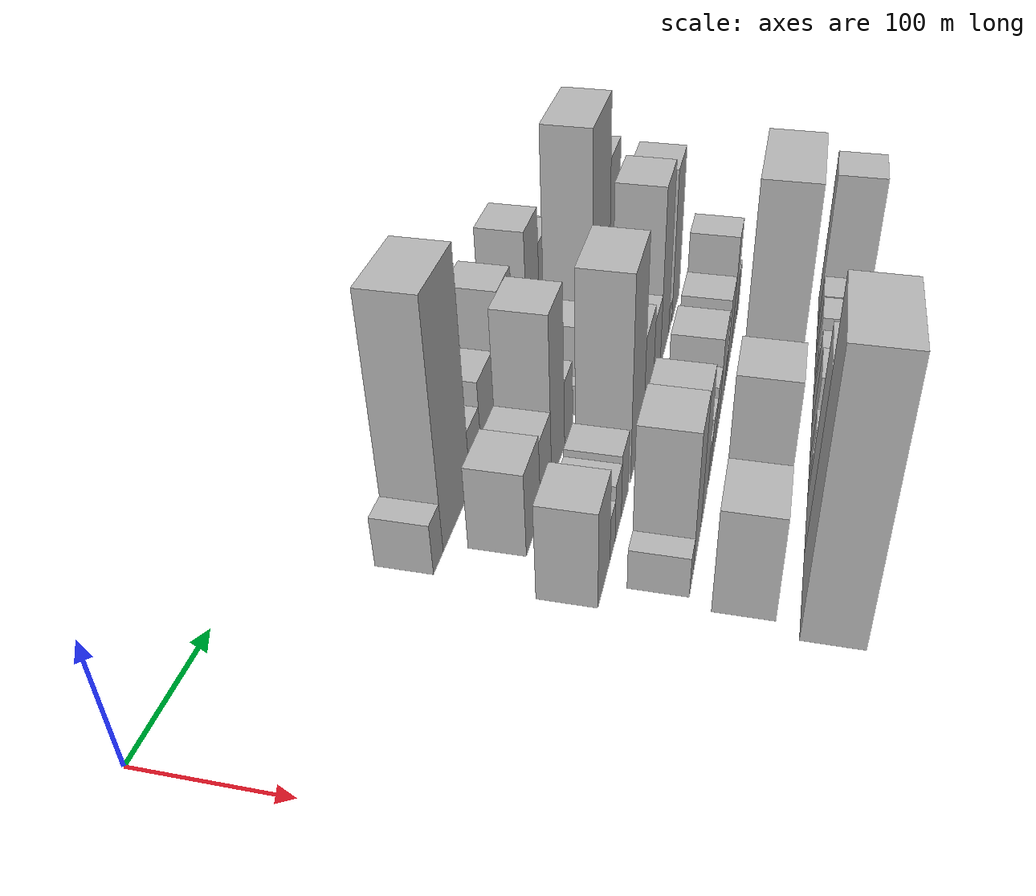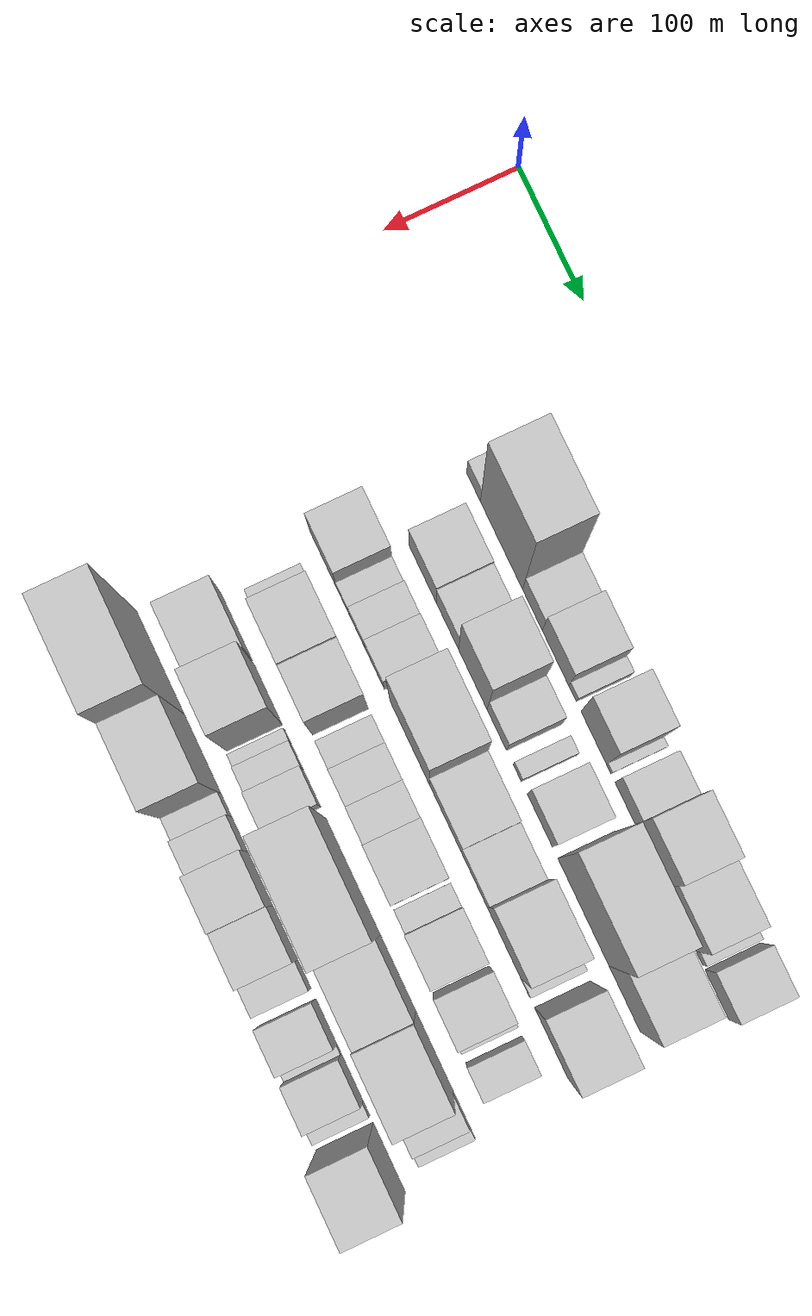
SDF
<sdf version="1.6">
 <world name="default">
  <model name="building_28">
   <static>1</static>
   <pose>100.0000 182.4115 0 0.000000 0.000000 0.000000</pose>
   <link name="link">
    <pose>0 0 21.00 0 0 0</pose>
    <collision name="collision"><geometry><box><size>40.0000 21.1088 42.0000</size></box></geometry></collision>
    <visual name="visual">
     <cast_shadows>0</cast_shadows>
     <geometry><box><size>40.0000 21.1088 42.0000</size></box></geometry>
     <material>
      <script>
       <uri>model://HANNAS_wall/materials/scripts</uri>
       <uri>model://HANNAS_wall/materials/textures</uri>
       <name>vrc/HANNAS_wall</name>
      </script>
     </material>
    </visual>
   </link>
  </model>
  <model name="building_29">
   <static>1</static>
   <pose>100.0000 225.2210 0 0.000000 0.000000 0.000000</pose>
   <link name="link">
    <pose>0 0 99.00 0 0 0</pose>
    <collision name="collision"><geometry><box><size>40.0000 64.5103 198.0000</size></box></geometry></collision>
    <visual name="visual">
     <cast_shadows>0</cast_shadows>
     <geometry><box><size>40.0000 64.5103 198.0000</size></box></geometry>
     <material>
      <script>
       <uri>model://HANNAS_wall/materials/scripts</uri>
       <uri>model://HANNAS_wall/materials/textures</uri>
       <name>vrc/HANNAS_wall</name>
      </script>
     </material>
    </visual>
   </link>
  </model>
  <model name="building_30">
   <static>1</static>
   <pose>100.0000 272.4925 0 0.000000 0.000000 0.000000</pose>
   <link name="link">
    <pose>0 0 25.50 0 0 0</pose>
    <collision name="collision"><geometry><box><size>40.0000 30.0327 51.0000</size></box></geometry></collision>
    <visual name="visual">
     <cast_shadows>0</cast_shadows>
     <geometry><box><size>40.0000 30.0327 51.0000</size></box></geometry>
     <material>
      <script>
       <uri>model://HANNAS_wall/materials/scripts</uri>
       <uri>model://HANNAS_wall/materials/textures</uri>
       <name>vrc/HANNAS_wall</name>
      </script>
     </material>
    </visual>
   </link>
  </model>
  <model name="building_31">
   <static>1</static>
   <pose>100.0000 307.5906 0 0.000000 0.000000 0.000000</pose>
   <link name="link">
    <pose>0 0 36.00 0 0 0</pose>
    <collision name="collision"><geometry><box><size>40.0000 40.1634 72.0000</size></box></geometry></collision>
    <visual name="visual">
     <cast_shadows>0</cast_shadows>
     <geometry><box><size>40.0000 40.1634 72.0000</size></box></geometry>
     <material>
      <script>
       <uri>model://HANNAS_wall/materials/scripts</uri>
       <uri>model://HANNAS_wall/materials/textures</uri>
       <name>vrc/HANNAS_wall</name>
      </script>
     </material>
    </visual>
   </link>
  </model>
  <model name="building_32">
   <static>1</static>
   <pose>100.0000 333.4766 0 0.000000 0.000000 0.000000</pose>
   <link name="link">
    <pose>0 0 12.00 0 0 0</pose>
    <collision name="collision"><geometry><box><size>40.0000 11.6085 24.0000</size></box></geometry></collision>
    <visual name="visual">
     <cast_shadows>0</cast_shadows>
     <geometry><box><size>40.0000 11.6085 24.0000</size></box></geometry>
     <material>
      <script>
       <uri>model://HANNAS_wall/materials/scripts</uri>
       <uri>model://HANNAS_wall/materials/textures</uri>
       <name>vrc/HANNAS_wall</name>
      </script>
     </material>
    </visual>
   </link>
  </model>
  <model name="building_33">
   <static>1</static>
   <pose>100.0000 365.5160 0 0.000000 0.000000 0.000000</pose>
   <link name="link">
    <pose>0 0 55.50 0 0 0</pose>
    <collision name="collision"><geometry><box><size>40.0000 38.4703 111.0000</size></box></geometry></collision>
    <visual name="visual">
     <cast_shadows>0</cast_shadows>
     <geometry><box><size>40.0000 38.4703 111.0000</size></box></geometry>
     <material>
      <script>
       <uri>model://HANNAS_wall/materials/scripts</uri>
       <uri>model://HANNAS_wall/materials/textures</uri>
       <name>vrc/HANNAS_wall</name>
      </script>
     </material>
    </visual>
   </link>
  </model>
  <model name="building_34">
   <static>1</static>
   <pose>100.0000 388.1148 0 0.000000 0.000000 0.000000</pose>
   <link name="link">
    <pose>0 0 7.50 0 0 0</pose>
    <collision name="collision"><geometry><box><size>40.0000 6.7272 15.0000</size></box></geometry></collision>
    <visual name="visual">
     <cast_shadows>0</cast_shadows>
     <geometry><box><size>40.0000 6.7272 15.0000</size></box></geometry>
     <material>
      <script>
       <uri>model://HANNAS_wall/materials/scripts</uri>
       <uri>model://HANNAS_wall/materials/textures</uri>
       <name>vrc/HANNAS_wall</name>
      </script>
     </material>
    </visual>
   </link>
  </model>
  <model name="building_35">
   <static>1</static>
   <pose>100.0000 412.5603 0 0.000000 0.000000 0.000000</pose>
   <link name="link">
    <pose>0 0 30.00 0 0 0</pose>
    <collision name="collision"><geometry><box><size>40.0000 30.1639 60.0000</size></box></geometry></collision>
    <visual name="visual">
     <cast_shadows>0</cast_shadows>
     <geometry><box><size>40.0000 30.1639 60.0000</size></box></geometry>
     <material>
      <script>
       <uri>model://HANNAS_wall/materials/scripts</uri>
       <uri>model://HANNAS_wall/materials/textures</uri>
       <name>vrc/HANNAS_wall</name>
      </script>
     </material>
    </visual>
   </link>
  </model>
  <model name="building_36">
   <static>1</static>
   <pose>100.0000 449.9111 0 0.000000 0.000000 0.000000</pose>
   <link name="link">
    <pose>0 0 58.50 0 0 0</pose>
    <collision name="collision"><geometry><box><size>40.0000 44.5377 117.0000</size></box></geometry></collision>
    <visual name="visual">
     <cast_shadows>0</cast_shadows>
     <geometry><box><size>40.0000 44.5377 117.0000</size></box></geometry>
     <material>
      <script>
       <uri>model://HANNAS_wall/materials/scripts</uri>
       <uri>model://HANNAS_wall/materials/textures</uri>
       <name>vrc/HANNAS_wall</name>
      </script>
     </material>
    </visual>
   </link>
  </model>
  <model name="building_37">
   <static>1</static>
   <pose>100.0000 495.3001 0 0.000000 0.000000 0.000000</pose>
   <link name="link">
    <pose>0 0 42.00 0 0 0</pose>
    <collision name="collision"><geometry><box><size>40.0000 46.2402 84.0000</size></box></geometry></collision>
    <visual name="visual">
     <cast_shadows>0</cast_shadows>
     <geometry><box><size>40.0000 46.2402 84.0000</size></box></geometry>
     <material>
      <script>
       <uri>model://HANNAS_wall/materials/scripts</uri>
       <uri>model://HANNAS_wall/materials/textures</uri>
       <name>vrc/HANNAS_wall</name>
      </script>
     </material>
    </visual>
   </link>
  </model>
  <model name="building_38">
   <static>1</static>
   <pose>100.0000 523.3465 0 0.000000 0.000000 0.000000</pose>
   <link name="link">
    <pose>0 0 12.00 0 0 0</pose>
    <collision name="collision"><geometry><box><size>40.0000 9.8527 24.0000</size></box></geometry></collision>
    <visual name="visual">
     <cast_shadows>0</cast_shadows>
     <geometry><box><size>40.0000 9.8527 24.0000</size></box></geometry>
     <material>
      <script>
       <uri>model://HANNAS_wall/materials/scripts</uri>
       <uri>model://HANNAS_wall/materials/textures</uri>
       <name>vrc/HANNAS_wall</name>
      </script>
     </material>
    </visual>
   </link>
  </model>
  <model name="building_39">
   <static>1</static>
   <pose>100.0000 549.0333 0 0.000000 0.000000 0.000000</pose>
   <link name="link">
    <pose>0 0 30.00 0 0 0</pose>
    <collision name="collision"><geometry><box><size>40.0000 35.5210 60.0000</size></box></geometry></collision>
    <visual name="visual">
     <cast_shadows>0</cast_shadows>
     <geometry><box><size>40.0000 35.5210 60.0000</size></box></geometry>
     <material>
      <script>
       <uri>model://HANNAS_wall/materials/scripts</uri>
       <uri>model://HANNAS_wall/materials/textures</uri>
       <name>vrc/HANNAS_wall</name>
      </script>
     </material>
    </visual>
   </link>
  </model>
  <model name="building_83">
   <static>1</static>
   <pose>155.0000 220.5691 0 0.000000 0.000000 0.000000</pose>
   <link name="link">
    <pose>0 0 34.50 0 0 0</pose>
    <collision name="collision"><geometry><box><size>40.0000 41.2764 69.0000</size></box></geometry></collision>
    <visual name="visual">
     <cast_shadows>0</cast_shadows>
     <geometry><box><size>40.0000 41.2764 69.0000</size></box></geometry>
     <material>
      <script>
       <uri>model://HANNAS_wall/materials/scripts</uri>
       <uri>model://HANNAS_wall/materials/textures</uri>
       <name>vrc/HANNAS_wall</name>
      </script>
     </material>
    </visual>
   </link>
  </model>
  <model name="building_84">
   <static>1</static>
   <pose>155.0000 258.3768 0 0.000000 0.000000 0.000000</pose>
   <link name="link">
    <pose>0 0 31.50 0 0 0</pose>
    <collision name="collision"><geometry><box><size>40.0000 34.3391 63.0000</size></box></geometry></collision>
    <visual name="visual">
     <cast_shadows>0</cast_shadows>
     <geometry><box><size>40.0000 34.3391 63.0000</size></box></geometry>
     <material>
      <script>
       <uri>model://HANNAS_wall/materials/scripts</uri>
       <uri>model://HANNAS_wall/materials/textures</uri>
       <name>vrc/HANNAS_wall</name>
      </script>
     </material>
    </visual>
   </link>
  </model>
  <model name="building_85">
   <static>1</static>
   <pose>155.0000 297.3075 0 0.000000 0.000000 0.000000</pose>
   <link name="link">
    <pose>0 0 70.50 0 0 0</pose>
    <collision name="collision"><geometry><box><size>40.0000 43.5222 141.0000</size></box></geometry></collision>
    <visual name="visual">
     <cast_shadows>0</cast_shadows>
     <geometry><box><size>40.0000 43.5222 141.0000</size></box></geometry>
     <material>
      <script>
       <uri>model://HANNAS_wall/materials/scripts</uri>
       <uri>model://HANNAS_wall/materials/textures</uri>
       <name>vrc/HANNAS_wall</name>
      </script>
     </material>
    </visual>
   </link>
  </model>
  <model name="building_86">
   <static>1</static>
   <pose>155.0000 333.8665 0 0.000000 0.000000 0.000000</pose>
   <link name="link">
    <pose>0 0 28.50 0 0 0</pose>
    <collision name="collision"><geometry><box><size>40.0000 29.5959 57.0000</size></box></geometry></collision>
    <visual name="visual">
     <cast_shadows>0</cast_shadows>
     <geometry><box><size>40.0000 29.5959 57.0000</size></box></geometry>
     <material>
      <script>
       <uri>model://HANNAS_wall/materials/scripts</uri>
       <uri>model://HANNAS_wall/materials/textures</uri>
       <name>vrc/HANNAS_wall</name>
      </script>
     </material>
    </visual>
   </link>
  </model>
  <model name="building_87">
   <static>1</static>
   <pose>155.0000 364.9199 0 0.000000 0.000000 0.000000</pose>
   <link name="link">
    <pose>0 0 13.50 0 0 0</pose>
    <collision name="collision"><geometry><box><size>40.0000 12.5108 27.0000</size></box></geometry></collision>
    <visual name="visual">
     <cast_shadows>0</cast_shadows>
     <geometry><box><size>40.0000 12.5108 27.0000</size></box></geometry>
     <material>
      <script>
       <uri>model://HANNAS_wall/materials/scripts</uri>
       <uri>model://HANNAS_wall/materials/textures</uri>
       <name>vrc/HANNAS_wall</name>
      </script>
     </material>
    </visual>
   </link>
  </model>
  <model name="building_88">
   <static>1</static>
   <pose>155.0000 399.1207 0 0.000000 0.000000 0.000000</pose>
   <link name="link">
    <pose>0 0 33.00 0 0 0</pose>
    <collision name="collision"><geometry><box><size>40.0000 37.8909 66.0000</size></box></geometry></collision>
    <visual name="visual">
     <cast_shadows>0</cast_shadows>
     <geometry><box><size>40.0000 37.8909 66.0000</size></box></geometry>
     <material>
      <script>
       <uri>model://HANNAS_wall/materials/scripts</uri>
       <uri>model://HANNAS_wall/materials/textures</uri>
       <name>vrc/HANNAS_wall</name>
      </script>
     </material>
    </visual>
   </link>
  </model>
  <model name="building_89">
   <static>1</static>
   <pose>155.0000 464.3736 0 0.000000 0.000000 0.000000</pose>
   <link name="link">
    <pose>0 0 103.50 0 0 0</pose>
    <collision name="collision"><geometry><box><size>40.0000 76.6148 207.0000</size></box></geometry></collision>
    <visual name="visual">
     <cast_shadows>0</cast_shadows>
     <geometry><box><size>40.0000 76.6148 207.0000</size></box></geometry>
     <material>
      <script>
       <uri>model://HANNAS_wall/materials/scripts</uri>
       <uri>model://HANNAS_wall/materials/textures</uri>
       <name>vrc/HANNAS_wall</name>
      </script>
     </material>
    </visual>
   </link>
  </model>
  <model name="building_90">
   <static>1</static>
   <pose>155.0000 525.9546 0 0.000000 0.000000 0.000000</pose>
   <link name="link">
    <pose>0 0 75.00 0 0 0</pose>
    <collision name="collision"><geometry><box><size>40.0000 46.5472 150.0000</size></box></geometry></collision>
    <visual name="visual">
     <cast_shadows>0</cast_shadows>
     <geometry><box><size>40.0000 46.5472 150.0000</size></box></geometry>
     <material>
      <script>
       <uri>model://HANNAS_wall/materials/scripts</uri>
       <uri>model://HANNAS_wall/materials/textures</uri>
       <name>vrc/HANNAS_wall</name>
      </script>
     </material>
    </visual>
   </link>
  </model>
  <model name="building_131">
   <static>1</static>
   <pose>210.0000 185.0956 0 0.000000 0.000000 0.000000</pose>
   <link name="link">
    <pose>0 0 39.00 0 0 0</pose>
    <collision name="collision"><geometry><box><size>40.0000 41.9114 78.0000</size></box></geometry></collision>
    <visual name="visual">
     <cast_shadows>0</cast_shadows>
     <geometry><box><size>40.0000 41.9114 78.0000</size></box></geometry>
     <material>
      <script>
       <uri>model://HANNAS_wall/materials/scripts</uri>
       <uri>model://HANNAS_wall/materials/textures</uri>
       <name>vrc/HANNAS_wall</name>
      </script>
     </material>
    </visual>
   </link>
  </model>
  <model name="building_132">
   <static>1</static>
   <pose>210.0000 215.6216 0 0.000000 0.000000 0.000000</pose>
   <link name="link">
    <pose>0 0 18.00 0 0 0</pose>
    <collision name="collision"><geometry><box><size>40.0000 19.1405 36.0000</size></box></geometry></collision>
    <visual name="visual">
     <cast_shadows>0</cast_shadows>
     <geometry><box><size>40.0000 19.1405 36.0000</size></box></geometry>
     <material>
      <script>
       <uri>model://HANNAS_wall/materials/scripts</uri>
       <uri>model://HANNAS_wall/materials/textures</uri>
       <name>vrc/HANNAS_wall</name>
      </script>
     </material>
    </visual>
   </link>
  </model>
  <model name="building_133">
   <static>1</static>
   <pose>210.0000 237.2124 0 0.000000 0.000000 0.000000</pose>
   <link name="link">
    <pose>0 0 24.00 0 0 0</pose>
    <collision name="collision"><geometry><box><size>40.0000 24.0410 48.0000</size></box></geometry></collision>
    <visual name="visual">
     <cast_shadows>0</cast_shadows>
     <geometry><box><size>40.0000 24.0410 48.0000</size></box></geometry>
     <material>
      <script>
       <uri>model://HANNAS_wall/materials/scripts</uri>
       <uri>model://HANNAS_wall/materials/textures</uri>
       <name>vrc/HANNAS_wall</name>
      </script>
     </material>
    </visual>
   </link>
  </model>
  <model name="building_134">
   <static>1</static>
   <pose>210.0000 263.9055 0 0.000000 0.000000 0.000000</pose>
   <link name="link">
    <pose>0 0 27.00 0 0 0</pose>
    <collision name="collision"><geometry><box><size>40.0000 29.3453 54.0000</size></box></geometry></collision>
    <visual name="visual">
     <cast_shadows>0</cast_shadows>
     <geometry><box><size>40.0000 29.3453 54.0000</size></box></geometry>
     <material>
      <script>
       <uri>model://HANNAS_wall/materials/scripts</uri>
       <uri>model://HANNAS_wall/materials/textures</uri>
       <name>vrc/HANNAS_wall</name>
      </script>
     </material>
    </visual>
   </link>
  </model>
  <model name="building_135">
   <static>1</static>
   <pose>210.0000 317.5242 0 0.000000 0.000000 0.000000</pose>
   <link name="link">
    <pose>0 0 85.50 0 0 0</pose>
    <collision name="collision"><geometry><box><size>40.0000 59.8922 171.0000</size></box></geometry></collision>
    <visual name="visual">
     <cast_shadows>0</cast_shadows>
     <geometry><box><size>40.0000 59.8922 171.0000</size></box></geometry>
     <material>
      <script>
       <uri>model://HANNAS_wall/materials/scripts</uri>
       <uri>model://HANNAS_wall/materials/textures</uri>
       <name>vrc/HANNAS_wall</name>
      </script>
     </material>
    </visual>
   </link>
  </model>
  <model name="building_136">
   <static>1</static>
   <pose>210.0000 371.5395 0 0.000000 0.000000 0.000000</pose>
   <link name="link">
    <pose>0 0 42.00 0 0 0</pose>
    <collision name="collision"><geometry><box><size>40.0000 48.1383 84.0000</size></box></geometry></collision>
    <visual name="visual">
     <cast_shadows>0</cast_shadows>
     <geometry><box><size>40.0000 48.1383 84.0000</size></box></geometry>
     <material>
      <script>
       <uri>model://HANNAS_wall/materials/scripts</uri>
       <uri>model://HANNAS_wall/materials/textures</uri>
       <name>vrc/HANNAS_wall</name>
      </script>
     </material>
    </visual>
   </link>
  </model>
  <model name="building_137">
   <static>1</static>
   <pose>210.0000 415.1972 0 0.000000 0.000000 0.000000</pose>
   <link name="link">
    <pose>0 0 34.50 0 0 0</pose>
    <collision name="collision"><geometry><box><size>40.0000 39.1772 69.0000</size></box></geometry></collision>
    <visual name="visual">
     <cast_shadows>0</cast_shadows>
     <geometry><box><size>40.0000 39.1772 69.0000</size></box></geometry>
     <material>
      <script>
       <uri>model://HANNAS_wall/materials/scripts</uri>
       <uri>model://HANNAS_wall/materials/textures</uri>
       <name>vrc/HANNAS_wall</name>
      </script>
     </material>
    </visual>
   </link>
  </model>
  <model name="building_138">
   <static>1</static>
   <pose>210.0000 460.1755 0 0.000000 0.000000 0.000000</pose>
   <link name="link">
    <pose>0 0 81.00 0 0 0</pose>
    <collision name="collision"><geometry><box><size>40.0000 50.7792 162.0000</size></box></geometry></collision>
    <visual name="visual">
     <cast_shadows>0</cast_shadows>
     <geometry><box><size>40.0000 50.7792 162.0000</size></box></geometry>
     <material>
      <script>
       <uri>model://HANNAS_wall/materials/scripts</uri>
       <uri>model://HANNAS_wall/materials/textures</uri>
       <name>vrc/HANNAS_wall</name>
      </script>
     </material>
    </visual>
   </link>
  </model>
  <model name="building_139">
   <static>1</static>
   <pose>210.0000 491.9238 0 0.000000 0.000000 0.000000</pose>
   <link name="link">
    <pose>0 0 13.50 0 0 0</pose>
    <collision name="collision"><geometry><box><size>40.0000 12.7174 27.0000</size></box></geometry></collision>
    <visual name="visual">
     <cast_shadows>0</cast_shadows>
     <geometry><box><size>40.0000 12.7174 27.0000</size></box></geometry>
     <material>
      <script>
       <uri>model://HANNAS_wall/materials/scripts</uri>
       <uri>model://HANNAS_wall/materials/textures</uri>
       <name>vrc/HANNAS_wall</name>
      </script>
     </material>
    </visual>
   </link>
  </model>
  <model name="building_140">
   <static>1</static>
   <pose>210.0000 531.1478 0 0.000000 0.000000 0.000000</pose>
   <link name="link">
    <pose>0 0 72.00 0 0 0</pose>
    <collision name="collision"><geometry><box><size>40.0000 49.7306 144.0000</size></box></geometry></collision>
    <visual name="visual">
     <cast_shadows>0</cast_shadows>
     <geometry><box><size>40.0000 49.7306 144.0000</size></box></geometry>
     <material>
      <script>
       <uri>model://HANNAS_wall/materials/scripts</uri>
       <uri>model://HANNAS_wall/materials/textures</uri>
       <name>vrc/HANNAS_wall</name>
      </script>
     </material>
    </visual>
   </link>
  </model>
  <model name="building_183">
   <static>1</static>
   <pose>265.0000 193.8814 0 0.000000 0.000000 0.000000</pose>
   <link name="link">
    <pose>0 0 16.50 0 0 0</pose>
    <collision name="collision"><geometry><box><size>40.0000 18.5911 33.0000</size></box></geometry></collision>
    <visual name="visual">
     <cast_shadows>0</cast_shadows>
     <geometry><box><size>40.0000 18.5911 33.0000</size></box></geometry>
     <material>
      <script>
       <uri>model://HANNAS_wall/materials/scripts</uri>
       <uri>model://HANNAS_wall/materials/textures</uri>
       <name>vrc/HANNAS_wall</name>
      </script>
     </material>
    </visual>
   </link>
  </model>
  <model name="building_184">
   <static>1</static>
   <pose>265.0000 225.1936 0 0.000000 0.000000 0.000000</pose>
   <link name="link">
    <pose>0 0 58.50 0 0 0</pose>
    <collision name="collision"><geometry><box><size>40.0000 44.0332 117.0000</size></box></geometry></collision>
    <visual name="visual">
     <cast_shadows>0</cast_shadows>
     <geometry><box><size>40.0000 44.0332 117.0000</size></box></geometry>
     <material>
      <script>
       <uri>model://HANNAS_wall/materials/scripts</uri>
       <uri>model://HANNAS_wall/materials/textures</uri>
       <name>vrc/HANNAS_wall</name>
      </script>
     </material>
    </visual>
   </link>
  </model>
  <model name="building_185">
   <static>1</static>
   <pose>265.0000 266.4337 0 0.000000 0.000000 0.000000</pose>
   <link name="link">
    <pose>0 0 55.50 0 0 0</pose>
    <collision name="collision"><geometry><box><size>40.0000 38.4470 111.0000</size></box></geometry></collision>
    <visual name="visual">
     <cast_shadows>0</cast_shadows>
     <geometry><box><size>40.0000 38.4470 111.0000</size></box></geometry>
     <material>
      <script>
       <uri>model://HANNAS_wall/materials/scripts</uri>
       <uri>model://HANNAS_wall/materials/textures</uri>
       <name>vrc/HANNAS_wall</name>
      </script>
     </material>
    </visual>
   </link>
  </model>
  <model name="building_186">
   <static>1</static>
   <pose>265.0000 302.8409 0 0.000000 0.000000 0.000000</pose>
   <link name="link">
    <pose>0 0 18.00 0 0 0</pose>
    <collision name="collision"><geometry><box><size>40.0000 20.3674 36.0000</size></box></geometry></collision>
    <visual name="visual">
     <cast_shadows>0</cast_shadows>
     <geometry><box><size>40.0000 20.3674 36.0000</size></box></geometry>
     <material>
      <script>
       <uri>model://HANNAS_wall/materials/scripts</uri>
       <uri>model://HANNAS_wall/materials/textures</uri>
       <name>vrc/HANNAS_wall</name>
      </script>
     </material>
    </visual>
   </link>
  </model>
  <model name="building_187">
   <static>1</static>
   <pose>265.0000 326.3385 0 0.000000 0.000000 0.000000</pose>
   <link name="link">
    <pose>0 0 22.50 0 0 0</pose>
    <collision name="collision"><geometry><box><size>40.0000 26.6278 45.0000</size></box></geometry></collision>
    <visual name="visual">
     <cast_shadows>0</cast_shadows>
     <geometry><box><size>40.0000 26.6278 45.0000</size></box></geometry>
     <material>
      <script>
       <uri>model://HANNAS_wall/materials/scripts</uri>
       <uri>model://HANNAS_wall/materials/textures</uri>
       <name>vrc/HANNAS_wall</name>
      </script>
     </material>
    </visual>
   </link>
  </model>
  <model name="building_188">
   <static>1</static>
   <pose>265.0000 353.1662 0 0.000000 0.000000 0.000000</pose>
   <link name="link">
    <pose>0 0 27.00 0 0 0</pose>
    <collision name="collision"><geometry><box><size>40.0000 27.0276 54.0000</size></box></geometry></collision>
    <visual name="visual">
     <cast_shadows>0</cast_shadows>
     <geometry><box><size>40.0000 27.0276 54.0000</size></box></geometry>
     <material>
      <script>
       <uri>model://HANNAS_wall/materials/scripts</uri>
       <uri>model://HANNAS_wall/materials/textures</uri>
       <name>vrc/HANNAS_wall</name>
      </script>
     </material>
    </visual>
   </link>
  </model>
  <model name="building_189">
   <static>1</static>
   <pose>265.0000 387.2762 0 0.000000 0.000000 0.000000</pose>
   <link name="link">
    <pose>0 0 39.00 0 0 0</pose>
    <collision name="collision"><geometry><box><size>40.0000 41.1923 78.0000</size></box></geometry></collision>
    <visual name="visual">
     <cast_shadows>0</cast_shadows>
     <geometry><box><size>40.0000 41.1923 78.0000</size></box></geometry>
     <material>
      <script>
       <uri>model://HANNAS_wall/materials/scripts</uri>
       <uri>model://HANNAS_wall/materials/textures</uri>
       <name>vrc/HANNAS_wall</name>
      </script>
     </material>
    </visual>
   </link>
  </model>
  <model name="building_190">
   <static>1</static>
   <pose>265.0000 419.3475 0 0.000000 0.000000 0.000000</pose>
   <link name="link">
    <pose>0 0 16.50 0 0 0</pose>
    <collision name="collision"><geometry><box><size>40.0000 16.9504 33.0000</size></box></geometry></collision>
    <visual name="visual">
     <cast_shadows>0</cast_shadows>
     <geometry><box><size>40.0000 16.9504 33.0000</size></box></geometry>
     <material>
      <script>
       <uri>model://HANNAS_wall/materials/scripts</uri>
       <uri>model://HANNAS_wall/materials/textures</uri>
       <name>vrc/HANNAS_wall</name>
      </script>
     </material>
    </visual>
   </link>
  </model>
  <model name="building_191">
   <static>1</static>
   <pose>265.0000 446.7458 0 0.000000 0.000000 0.000000</pose>
   <link name="link">
    <pose>0 0 37.50 0 0 0</pose>
    <collision name="collision"><geometry><box><size>40.0000 37.8462 75.0000</size></box></geometry></collision>
    <visual name="visual">
     <cast_shadows>0</cast_shadows>
     <geometry><box><size>40.0000 37.8462 75.0000</size></box></geometry>
     <material>
      <script>
       <uri>model://HANNAS_wall/materials/scripts</uri>
       <uri>model://HANNAS_wall/materials/textures</uri>
       <name>vrc/HANNAS_wall</name>
      </script>
     </material>
    </visual>
   </link>
  </model>
  <model name="building_192">
   <static>1</static>
   <pose>265.0000 486.8025 0 0.000000 0.000000 0.000000</pose>
   <link name="link">
    <pose>0 0 54.00 0 0 0</pose>
    <collision name="collision"><geometry><box><size>40.0000 34.2673 108.0000</size></box></geometry></collision>
    <visual name="visual">
     <cast_shadows>0</cast_shadows>
     <geometry><box><size>40.0000 34.2673 108.0000</size></box></geometry>
     <material>
      <script>
       <uri>model://HANNAS_wall/materials/scripts</uri>
       <uri>model://HANNAS_wall/materials/textures</uri>
       <name>vrc/HANNAS_wall</name>
      </script>
     </material>
    </visual>
   </link>
  </model>
  <model name="building_193">
   <static>1</static>
   <pose>265.0000 508.0408 0 0.000000 0.000000 0.000000</pose>
   <link name="link">
    <pose>0 0 9.00 0 0 0</pose>
    <collision name="collision"><geometry><box><size>40.0000 8.2092 18.0000</size></box></geometry></collision>
    <visual name="visual">
     <cast_shadows>0</cast_shadows>
     <geometry><box><size>40.0000 8.2092 18.0000</size></box></geometry>
     <material>
      <script>
       <uri>model://HANNAS_wall/materials/scripts</uri>
       <uri>model://HANNAS_wall/materials/textures</uri>
       <name>vrc/HANNAS_wall</name>
      </script>
     </material>
    </visual>
   </link>
  </model>
  <model name="building_194">
   <static>1</static>
   <pose>265.0000 531.2425 0 0.000000 0.000000 0.000000</pose>
   <link name="link">
    <pose>0 0 24.00 0 0 0</pose>
    <collision name="collision"><geometry><box><size>40.0000 24.1943 48.0000</size></box></geometry></collision>
    <visual name="visual">
     <cast_shadows>0</cast_shadows>
     <geometry><box><size>40.0000 24.1943 48.0000</size></box></geometry>
     <material>
      <script>
       <uri>model://HANNAS_wall/materials/scripts</uri>
       <uri>model://HANNAS_wall/materials/textures</uri>
       <name>vrc/HANNAS_wall</name>
      </script>
     </material>
    </visual>
   </link>
  </model>
  <model name="building_239">
   <static>1</static>
   <pose>320.0000 199.9259 0 0.000000 0.000000 0.000000</pose>
   <link name="link">
    <pose>0 0 42.00 0 0 0</pose>
    <collision name="collision"><geometry><box><size>40.0000 49.6329 84.0000</size></box></geometry></collision>
    <visual name="visual">
     <cast_shadows>0</cast_shadows>
     <geometry><box><size>40.0000 49.6329 84.0000</size></box></geometry>
     <material>
      <script>
       <uri>model://HANNAS_wall/materials/scripts</uri>
       <uri>model://HANNAS_wall/materials/textures</uri>
       <name>vrc/HANNAS_wall</name>
      </script>
     </material>
    </visual>
   </link>
  </model>
  <model name="building_240">
   <static>1</static>
   <pose>320.0000 249.5330 0 0.000000 0.000000 0.000000</pose>
   <link name="link">
    <pose>0 0 72.00 0 0 0</pose>
    <collision name="collision"><geometry><box><size>40.0000 43.5812 144.0000</size></box></geometry></collision>
    <visual name="visual">
     <cast_shadows>0</cast_shadows>
     <geometry><box><size>40.0000 43.5812 144.0000</size></box></geometry>
     <material>
      <script>
       <uri>model://HANNAS_wall/materials/scripts</uri>
       <uri>model://HANNAS_wall/materials/textures</uri>
       <name>vrc/HANNAS_wall</name>
      </script>
     </material>
    </visual>
   </link>
  </model>
  <model name="building_241">
   <static>1</static>
   <pose>320.0000 280.1293 0 0.000000 0.000000 0.000000</pose>
   <link name="link">
    <pose>0 0 12.00 0 0 0</pose>
    <collision name="collision"><geometry><box><size>40.0000 9.6115 24.0000</size></box></geometry></collision>
    <visual name="visual">
     <cast_shadows>0</cast_shadows>
     <geometry><box><size>40.0000 9.6115 24.0000</size></box></geometry>
     <material>
      <script>
       <uri>model://HANNAS_wall/materials/scripts</uri>
       <uri>model://HANNAS_wall/materials/textures</uri>
       <name>vrc/HANNAS_wall</name>
      </script>
     </material>
    </visual>
   </link>
  </model>
  <model name="building_242">
   <static>1</static>
   <pose>320.0000 294.2391 0 0.000000 0.000000 0.000000</pose>
   <link name="link">
    <pose>0 0 18.00 0 0 0</pose>
    <collision name="collision"><geometry><box><size>40.0000 18.6081 36.0000</size></box></geometry></collision>
    <visual name="visual">
     <cast_shadows>0</cast_shadows>
     <geometry><box><size>40.0000 18.6081 36.0000</size></box></geometry>
     <material>
      <script>
       <uri>model://HANNAS_wall/materials/scripts</uri>
       <uri>model://HANNAS_wall/materials/textures</uri>
       <name>vrc/HANNAS_wall</name>
      </script>
     </material>
    </visual>
   </link>
  </model>
  <model name="building_243">
   <static>1</static>
   <pose>320.0000 317.0515 0 0.000000 0.000000 0.000000</pose>
   <link name="link">
    <pose>0 0 25.50 0 0 0</pose>
    <collision name="collision"><geometry><box><size>40.0000 27.0167 51.0000</size></box></geometry></collision>
    <visual name="visual">
     <cast_shadows>0</cast_shadows>
     <geometry><box><size>40.0000 27.0167 51.0000</size></box></geometry>
     <material>
      <script>
       <uri>model://HANNAS_wall/materials/scripts</uri>
       <uri>model://HANNAS_wall/materials/textures</uri>
       <name>vrc/HANNAS_wall</name>
      </script>
     </material>
    </visual>
   </link>
  </model>
  <model name="building_244">
   <static>1</static>
   <pose>320.0000 380.2202 0 0.000000 0.000000 0.000000</pose>
   <link name="link">
    <pose>0 0 109.50 0 0 0</pose>
    <collision name="collision"><geometry><box><size>40.0000 83.3209 219.0000</size></box></geometry></collision>
    <visual name="visual">
     <cast_shadows>0</cast_shadows>
     <geometry><box><size>40.0000 83.3209 219.0000</size></box></geometry>
     <material>
      <script>
       <uri>model://HANNAS_wall/materials/scripts</uri>
       <uri>model://HANNAS_wall/materials/textures</uri>
       <name>vrc/HANNAS_wall</name>
      </script>
     </material>
    </visual>
   </link>
  </model>
  <model name="building_245">
   <static>1</static>
   <pose>320.0000 448.4502 0 0.000000 0.000000 0.000000</pose>
   <link name="link">
    <pose>0 0 75.00 0 0 0</pose>
    <collision name="collision"><geometry><box><size>40.0000 53.1390 150.0000</size></box></geometry></collision>
    <visual name="visual">
     <cast_shadows>0</cast_shadows>
     <geometry><box><size>40.0000 53.1390 150.0000</size></box></geometry>
     <material>
      <script>
       <uri>model://HANNAS_wall/materials/scripts</uri>
       <uri>model://HANNAS_wall/materials/textures</uri>
       <name>vrc/HANNAS_wall</name>
      </script>
     </material>
    </visual>
   </link>
  </model>
  <model name="building_246">
   <static>1</static>
   <pose>320.0000 503.0672 0 0.000000 0.000000 0.000000</pose>
   <link name="link">
    <pose>0 0 82.50 0 0 0</pose>
    <collision name="collision"><geometry><box><size>40.0000 56.0951 165.0000</size></box></geometry></collision>
    <visual name="visual">
     <cast_shadows>0</cast_shadows>
     <geometry><box><size>40.0000 56.0951 165.0000</size></box></geometry>
     <material>
      <script>
       <uri>model://HANNAS_wall/materials/scripts</uri>
       <uri>model://HANNAS_wall/materials/textures</uri>
       <name>vrc/HANNAS_wall</name>
      </script>
     </material>
    </visual>
   </link>
  </model>
  <model name="building_247">
   <static>1</static>
   <pose>320.0000 543.4077 0 0.000000 0.000000 0.000000</pose>
   <link name="link">
    <pose>0 0 21.00 0 0 0</pose>
    <collision name="collision"><geometry><box><size>40.0000 24.5858 42.0000</size></box></geometry></collision>
    <visual name="visual">
     <cast_shadows>0</cast_shadows>
     <geometry><box><size>40.0000 24.5858 42.0000</size></box></geometry>
     <material>
      <script>
       <uri>model://HANNAS_wall/materials/scripts</uri>
       <uri>model://HANNAS_wall/materials/textures</uri>
       <name>vrc/HANNAS_wall</name>
      </script>
     </material>
    </visual>
   </link>
  </model>
  <model name="building_248">
   <static>1</static>
   <pose>320.0000 560.0782 0 0.000000 0.000000 0.000000</pose>
   <link name="link">
    <pose>0 0 9.00 0 0 0</pose>
    <collision name="collision"><geometry><box><size>40.0000 8.7554 18.0000</size></box></geometry></collision>
    <visual name="visual">
     <cast_shadows>0</cast_shadows>
     <geometry><box><size>40.0000 8.7554 18.0000</size></box></geometry>
     <material>
      <script>
       <uri>model://HANNAS_wall/materials/scripts</uri>
       <uri>model://HANNAS_wall/materials/textures</uri>
       <name>vrc/HANNAS_wall</name>
      </script>
     </material>
    </visual>
   </link>
  </model>
  <model name="building_296">
   <static>1</static>
   <pose>375.0000 199.8773 0 0.000000 0.000000 0.000000</pose>
   <link name="link">
    <pose>0 0 108.00 0 0 0</pose>
    <collision name="collision"><geometry><box><size>40.0000 75.1469 216.0000</size></box></geometry></collision>
    <visual name="visual">
     <cast_shadows>0</cast_shadows>
     <geometry><box><size>40.0000 75.1469 216.0000</size></box></geometry>
     <material>
      <script>
       <uri>model://HANNAS_wall/materials/scripts</uri>
       <uri>model://HANNAS_wall/materials/textures</uri>
       <name>vrc/HANNAS_wall</name>
      </script>
     </material>
    </visual>
   </link>
  </model>
  <model name="building_297">
   <static>1</static>
   <pose>375.0000 266.1403 0 0.000000 0.000000 0.000000</pose>
   <link name="link">
    <pose>0 0 73.50 0 0 0</pose>
    <collision name="collision"><geometry><box><size>40.0000 57.3791 147.0000</size></box></geometry></collision>
    <visual name="visual">
     <cast_shadows>0</cast_shadows>
     <geometry><box><size>40.0000 57.3791 147.0000</size></box></geometry>
     <material>
      <script>
       <uri>model://HANNAS_wall/materials/scripts</uri>
       <uri>model://HANNAS_wall/materials/textures</uri>
       <name>vrc/HANNAS_wall</name>
      </script>
     </material>
    </visual>
   </link>
  </model>
  <model name="building_298">
   <static>1</static>
   <pose>375.0000 303.2373 0 0.000000 0.000000 0.000000</pose>
   <link name="link">
    <pose>0 0 15.00 0 0 0</pose>
    <collision name="collision"><geometry><box><size>40.0000 16.8150 30.0000</size></box></geometry></collision>
    <visual name="visual">
     <cast_shadows>0</cast_shadows>
     <geometry><box><size>40.0000 16.8150 30.0000</size></box></geometry>
     <material>
      <script>
       <uri>model://HANNAS_wall/materials/scripts</uri>
       <uri>model://HANNAS_wall/materials/textures</uri>
       <name>vrc/HANNAS_wall</name>
      </script>
     </material>
    </visual>
   </link>
  </model>
  <model name="building_299">
   <static>1</static>
   <pose>375.0000 324.0877 0 0.000000 0.000000 0.000000</pose>
   <link name="link">
    <pose>0 0 24.00 0 0 0</pose>
    <collision name="collision"><geometry><box><size>40.0000 24.8860 48.0000</size></box></geometry></collision>
    <visual name="visual">
     <cast_shadows>0</cast_shadows>
     <geometry><box><size>40.0000 24.8860 48.0000</size></box></geometry>
     <material>
      <script>
       <uri>model://HANNAS_wall/materials/scripts</uri>
       <uri>model://HANNAS_wall/materials/textures</uri>
       <name>vrc/HANNAS_wall</name>
      </script>
     </material>
    </visual>
   </link>
  </model>
  <model name="building_300">
   <static>1</static>
   <pose>375.0000 355.9058 0 0.000000 0.000000 0.000000</pose>
   <link name="link">
    <pose>0 0 37.50 0 0 0</pose>
    <collision name="collision"><geometry><box><size>40.0000 38.7501 75.0000</size></box></geometry></collision>
    <visual name="visual">
     <cast_shadows>0</cast_shadows>
     <geometry><box><size>40.0000 38.7501 75.0000</size></box></geometry>
     <material>
      <script>
       <uri>model://HANNAS_wall/materials/scripts</uri>
       <uri>model://HANNAS_wall/materials/textures</uri>
       <name>vrc/HANNAS_wall</name>
      </script>
     </material>
    </visual>
   </link>
  </model>
  <model name="building_301">
   <static>1</static>
   <pose>375.0000 394.5269 0 0.000000 0.000000 0.000000</pose>
   <link name="link">
    <pose>0 0 33.00 0 0 0</pose>
    <collision name="collision"><geometry><box><size>40.0000 38.4922 66.0000</size></box></geometry></collision>
    <visual name="visual">
     <cast_shadows>0</cast_shadows>
     <geometry><box><size>40.0000 38.4922 66.0000</size></box></geometry>
     <material>
      <script>
       <uri>model://HANNAS_wall/materials/scripts</uri>
       <uri>model://HANNAS_wall/materials/textures</uri>
       <name>vrc/HANNAS_wall</name>
      </script>
     </material>
    </visual>
   </link>
  </model>
  <model name="building_302">
   <static>1</static>
   <pose>375.0000 423.8959 0 0.000000 0.000000 0.000000</pose>
   <link name="link">
    <pose>0 0 19.50 0 0 0</pose>
    <collision name="collision"><geometry><box><size>40.0000 20.2458 39.0000</size></box></geometry></collision>
    <visual name="visual">
     <cast_shadows>0</cast_shadows>
     <geometry><box><size>40.0000 20.2458 39.0000</size></box></geometry>
     <material>
      <script>
       <uri>model://HANNAS_wall/materials/scripts</uri>
       <uri>model://HANNAS_wall/materials/textures</uri>
       <name>vrc/HANNAS_wall</name>
      </script>
     </material>
    </visual>
   </link>
  </model>
  <model name="building_303">
   <static>1</static>
   <pose>375.0000 457.0603 0 0.000000 0.000000 0.000000</pose>
   <link name="link">
    <pose>0 0 30.00 0 0 0</pose>
    <collision name="collision"><geometry><box><size>40.0000 32.0829 60.0000</size></box></geometry></collision>
    <visual name="visual">
     <cast_shadows>0</cast_shadows>
     <geometry><box><size>40.0000 32.0829 60.0000</size></box></geometry>
     <material>
      <script>
       <uri>model://HANNAS_wall/materials/scripts</uri>
       <uri>model://HANNAS_wall/materials/textures</uri>
       <name>vrc/HANNAS_wall</name>
      </script>
     </material>
    </visual>
   </link>
  </model>
  <model name="building_304">
   <static>1</static>
   <pose>375.0000 476.3823 0 0.000000 0.000000 0.000000</pose>
   <link name="link">
    <pose>0 0 7.50 0 0 0</pose>
    <collision name="collision"><geometry><box><size>40.0000 6.5612 15.0000</size></box></geometry></collision>
    <visual name="visual">
     <cast_shadows>0</cast_shadows>
     <geometry><box><size>40.0000 6.5612 15.0000</size></box></geometry>
     <material>
      <script>
       <uri>model://HANNAS_wall/materials/scripts</uri>
       <uri>model://HANNAS_wall/materials/textures</uri>
       <name>vrc/HANNAS_wall</name>
      </script>
     </material>
    </visual>
   </link>
  </model>
  <model name="building_305">
   <static>1</static>
   <pose>375.0000 496.1429 0 0.000000 0.000000 0.000000</pose>
   <link name="link">
    <pose>0 0 28.50 0 0 0</pose>
    <collision name="collision"><geometry><box><size>40.0000 32.9600 57.0000</size></box></geometry></collision>
    <visual name="visual">
     <cast_shadows>0</cast_shadows>
     <geometry><box><size>40.0000 32.9600 57.0000</size></box></geometry>
     <material>
      <script>
       <uri>model://HANNAS_wall/materials/scripts</uri>
       <uri>model://HANNAS_wall/materials/textures</uri>
       <name>vrc/HANNAS_wall</name>
      </script>
     </material>
    </visual>
   </link>
  </model>
  <model name="building_306">
   <static>1</static>
   <pose>375.0000 517.7998 0 0.000000 0.000000 0.000000</pose>
   <link name="link">
    <pose>0 0 10.50 0 0 0</pose>
    <collision name="collision"><geometry><box><size>40.0000 10.3539 21.0000</size></box></geometry></collision>
    <visual name="visual">
     <cast_shadows>0</cast_shadows>
     <geometry><box><size>40.0000 10.3539 21.0000</size></box></geometry>
     <material>
      <script>
       <uri>model://HANNAS_wall/materials/scripts</uri>
       <uri>model://HANNAS_wall/materials/textures</uri>
       <name>vrc/HANNAS_wall</name>
      </script>
     </material>
    </visual>
   </link>
  </model>
  <model name="building_307">
   <static>1</static>
   <pose>375.0000 552.1457 0 0.000000 0.000000 0.000000</pose>
   <link name="link">
    <pose>0 0 70.50 0 0 0</pose>
    <collision name="collision"><geometry><box><size>40.0000 48.3378 141.0000</size></box></geometry></collision>
    <visual name="visual">
     <cast_shadows>0</cast_shadows>
     <geometry><box><size>40.0000 48.3378 141.0000</size></box></geometry>
     <material>
      <script>
       <uri>model://HANNAS_wall/materials/scripts</uri>
       <uri>model://HANNAS_wall/materials/textures</uri>
       <name>vrc/HANNAS_wall</name>
      </script>
     </material>
    </visual>
   </link>
  </model>
 </world>
</sdf>
